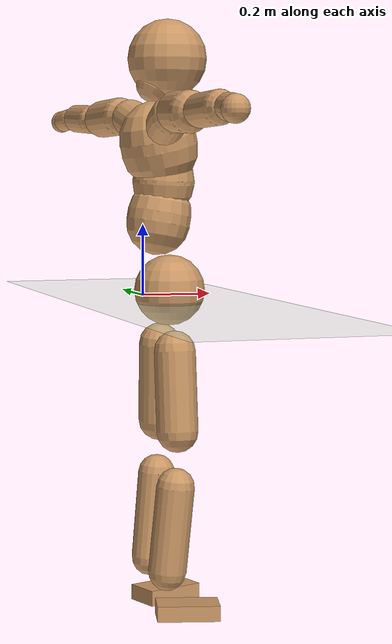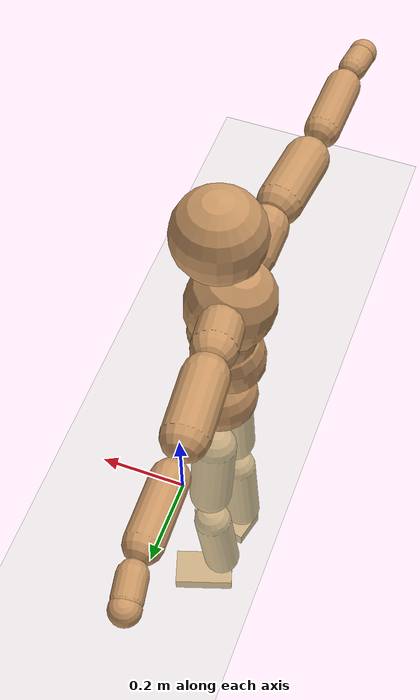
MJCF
<mujoco model="humanoid">
  <compiler coordinate="local"/>
  <default>
    <joint damping="0.0" armature="0.01" stiffness="0.0" limited="true"/>
    <geom conaffinity="1" condim="3" contype="7" margin="0.001" rgba="0.8 0.6 .4 1"/>
  </default>
  <asset>
    <texture type="skybox" builtin="gradient" rgb1=".4 .5 .6" rgb2="0 0 0" width="100" height="100"/>
    <texture builtin="flat" height="1278" mark="cross" markrgb="1 1 1" name="texgeom" random="0.01" rgb1="0.8 0.6 0.4" rgb2="0.8 0.6 0.4" type="cube" width="127"/>
    <texture builtin="checker" height="100" name="texplane" rgb1="0 0 0" rgb2="0.8 0.8 0.8" type="2d" width="100"/>
    <material name="MatPlane" reflectance="0.5" shininess="1" specular="1" texrepeat="60 60" texture="texplane"/>
    <material name="geom" texture="texgeom" texuniform="true"/>
  </asset>
  <worldbody>
    <light cutoff="100" diffuse="1 1 1" dir="-0 0 -1.3" directional="true" exponent="1" pos="0 0 1.3" specular=".1 .1 .1"/>
    <geom conaffinity="1" condim="3" name="floor" pos="0 0 0" rgba="0.8 0.9 0.8 1" size="100 100 .2" type="plane" material="MatPlane"/>
    <body name="Pelvis" pos="-0.001 -0.2487 0.034">
      <freejoint name="Pelvis"/>
      <geom type="sphere" contype="1" conaffinity="1" density="500" size="0.0948" pos="0.0000 0.0000 0.0000" name="Pelvis"/>
      <body name="L_Hip" pos="-0.0101 0.0552 -0.0794">
        <joint name="L_Hip_x" type="hinge" pos="0 0 0" axis="1 0 0" stiffness="800" damping="80" armature="0.02" range="-180.0000 180.0000"/>
        <joint name="L_Hip_y" type="hinge" pos="0 0 0" axis="0 1 0" stiffness="800" damping="80" armature="0.02" range="-180.0000 180.0000"/>
        <joint name="L_Hip_z" type="hinge" pos="0 0 0" axis="0 0 1" stiffness="800" damping="80" armature="0.02" range="-180.0000 180.0000"/>
        <geom type="capsule" contype="1" conaffinity="1" density="500" fromto="0.0021 0.0077 -0.0712 0.0082 0.0309 -0.2848" size="0.056" name="L_Hip"/>
        <body name="L_Knee" pos="0.0103 0.0386 -0.356">
          <joint name="L_Knee_x" type="hinge" pos="0 0 0" axis="1 0 0" stiffness="800" damping="80" armature="0.02" range="-180.0000 180.0000"/>
          <joint name="L_Knee_y" type="hinge" pos="0 0 0" axis="0 1 0" stiffness="800" damping="80" armature="0.02" range="-180.0000 180.0000"/>
          <joint name="L_Knee_z" type="hinge" pos="0 0 0" axis="0 0 1" stiffness="800" damping="80" armature="0.02" range="-180.0000 180.0000"/>
          <geom type="capsule" contype="1" conaffinity="1" density="500" fromto="-0.0071 -0.0027 -0.0778 -0.0283 -0.0108 -0.3114" size="0.0507" name="L_Knee"/>
          <body name="L_Ankle" pos="-0.0354 -0.0135 -0.3892">
            <joint name="L_Ankle_x" type="hinge" pos="0 0 0" axis="1 0 0" stiffness="800" damping="80" armature="0.02" range="-180.0000 180.0000"/>
            <joint name="L_Ankle_y" type="hinge" pos="0 0 0" axis="0 1 0" stiffness="800" damping="80" armature="0.02" range="-180.0000 180.0000"/>
            <joint name="L_Ankle_z" type="hinge" pos="0 0 0" axis="0 0 1" stiffness="800" damping="80" armature="0.02" range="-180.0000 180.0000"/>
            <geom type="box" contype="1" conaffinity="1" density="500" pos="0.0574 0.0189 -0.0277" size="0.0814 0.0485 0.021" quat="0.9873 0.0000 0.0000 0.1587" name="L_Ankle"/>
            <body name="L_Toe" pos="0.1148 0.0379 -0.0554">
              <joint name="L_Toe_x" type="hinge" pos="0 0 0" axis="1 0 0" stiffness="500" damping="50" armature="0.02" range="-180.0000 180.0000"/>
              <joint name="L_Toe_y" type="hinge" pos="0 0 0" axis="0 1 0" stiffness="500" damping="50" armature="0.02" range="-180.0000 180.0000"/>
              <joint name="L_Toe_z" type="hinge" pos="0 0 0" axis="0 0 1" stiffness="500" damping="50" armature="0.02" range="-180.0000 180.0000"/>
              <geom type="box" contype="1" conaffinity="1" density="500" pos="0.0000 0.0000 0.0282" size="0.001 0.0023 0.0011" quat="0.9865 0.0000 0.0000 0.1638" name="L_Toe"/>
            </body>
          </body>
        </body>
      </body>
      <body name="R_Hip" pos="-0.0059 -0.0564 -0.0881">
        <joint name="R_Hip_x" type="hinge" pos="0 0 0" axis="1 0 0" stiffness="800" damping="80" armature="0.02" range="-180.0000 180.0000"/>
        <joint name="R_Hip_y" type="hinge" pos="0 0 0" axis="0 1 0" stiffness="800" damping="80" armature="0.02" range="-180.0000 180.0000"/>
        <joint name="R_Hip_z" type="hinge" pos="0 0 0" axis="0 0 1" stiffness="800" damping="80" armature="0.02" range="-180.0000 180.0000"/>
        <geom type="capsule" contype="1" conaffinity="1" density="500" fromto="0.0000 -0.0078 -0.0708 0.0002 -0.0314 -0.2832" size="0.0556" name="R_Hip"/>
        <body name="R_Knee" pos="0.0002 -0.0392 -0.354">
          <joint name="R_Knee_x" type="hinge" pos="0 0 0" axis="1 0 0" stiffness="800" damping="80" armature="0.02" range="-180.0000 180.0000"/>
          <joint name="R_Knee_y" type="hinge" pos="0 0 0" axis="0 1 0" stiffness="800" damping="80" armature="0.02" range="-180.0000 180.0000"/>
          <joint name="R_Knee_z" type="hinge" pos="0 0 0" axis="0 0 1" stiffness="800" damping="80" armature="0.02" range="-180.0000 180.0000"/>
          <geom type="capsule" contype="1" conaffinity="1" density="500" fromto="-0.0064 0.0034 -0.0767 -0.0255 0.0137 -0.3069" size="0.0512" name="R_Knee"/>
          <body name="R_Ankle" pos="-0.0319 0.0172 -0.3836">
            <joint name="R_Ankle_x" type="hinge" pos="0 0 0" axis="1 0 0" stiffness="800" damping="80" armature="0.02" range="-180.0000 180.0000"/>
            <joint name="R_Ankle_y" type="hinge" pos="0 0 0" axis="0 1 0" stiffness="800" damping="80" armature="0.02" range="-180.0000 180.0000"/>
            <joint name="R_Ankle_z" type="hinge" pos="0 0 0" axis="0 0 1" stiffness="800" damping="80" armature="0.02" range="-180.0000 180.0000"/>
            <geom type="box" contype="1" conaffinity="1" density="500" pos="0.0604 -0.0147 -0.0294" size="0.084 0.0475 0.0211" quat="0.9929 0.0000 0.0000 -0.1193" name="R_Ankle"/>
            <body name="R_Toe" pos="0.1208 -0.0295 -0.0587">
              <joint name="R_Toe_x" type="hinge" pos="0 0 0" axis="1 0 0" stiffness="500" damping="50" armature="0.02" range="-180.0000 180.0000"/>
              <joint name="R_Toe_y" type="hinge" pos="0 0 0" axis="0 1 0" stiffness="500" damping="50" armature="0.02" range="-180.0000 180.0000"/>
              <joint name="R_Toe_z" type="hinge" pos="0 0 0" axis="0 0 1" stiffness="500" damping="50" armature="0.02" range="-180.0000 180.0000"/>
              <geom type="box" contype="1" conaffinity="1" density="500" pos="0.0000 0.0000 0.0296" size="0.0011 0.0024 0.0011" quat="0.9940 0.0000 0.0000 -0.1098" name="R_Toe"/>
            </body>
          </body>
        </body>
      </body>
      <body name="Torso" pos="-0.0408 0.0041 0.1245">
        <joint name="Torso_x" type="hinge" pos="0 0 0" axis="1 0 0" stiffness="1000" damping="100" armature="0.02" range="-180.0000 180.0000"/>
        <joint name="Torso_y" type="hinge" pos="0 0 0" axis="0 1 0" stiffness="1000" damping="100" armature="0.02" range="-180.0000 180.0000"/>
        <joint name="Torso_z" type="hinge" pos="0 0 0" axis="0 0 1" stiffness="1000" damping="100" armature="0.02" range="-180.0000 180.0000"/>
        <geom type="capsule" contype="1" conaffinity="1" density="500" fromto="0.0152 0.0033 0.0822 0.0102 0.0022 0.0548" size="0.0854" name="Torso"/>
        <body name="Spine" pos="0.0254 0.0055 0.1369">
          <joint name="Spine_x" type="hinge" pos="0 0 0" axis="1 0 0" stiffness="1000" damping="100" armature="0.02" range="-180.0000 180.0000"/>
          <joint name="Spine_y" type="hinge" pos="0 0 0" axis="0 1 0" stiffness="1000" damping="100" armature="0.02" range="-180.0000 180.0000"/>
          <joint name="Spine_z" type="hinge" pos="0 0 0" axis="0 0 1" stiffness="1000" damping="100" armature="0.02" range="-180.0000 180.0000"/>
          <geom type="capsule" contype="1" conaffinity="1" density="500" fromto="0.0011 -0.0014 0.0331 0.0007 -0.0009 0.0221" size="0.0829" name="Spine"/>
          <body name="Chest" pos="0.0019 -0.0023 0.0552">
            <joint name="Chest_x" type="hinge" pos="0 0 0" axis="1 0 0" stiffness="1000" damping="100" armature="0.02" range="-180.0000 180.0000"/>
            <joint name="Chest_y" type="hinge" pos="0 0 0" axis="0 1 0" stiffness="1000" damping="100" armature="0.02" range="-180.0000 180.0000"/>
            <joint name="Chest_z" type="hinge" pos="0 0 0" axis="0 0 1" stiffness="1000" damping="100" armature="0.02" range="-180.0000 180.0000"/>
            <geom type="capsule" contype="1" conaffinity="1" density="500" fromto="-0.0200 -0.0054 0.0871 -0.0133 -0.0036 0.0581" size="0.1029" name="Chest"/>
            <body name="Neck" pos="-0.0443 -0.013 0.2114">
              <joint name="Neck_x" type="hinge" pos="0 0 0" axis="1 0 0" stiffness="500" damping="50" armature="0.02" range="-180.0000 180.0000"/>
              <joint name="Neck_y" type="hinge" pos="0 0 0" axis="0 1 0" stiffness="500" damping="50" armature="0.02" range="-180.0000 180.0000"/>
              <joint name="Neck_z" type="hinge" pos="0 0 0" axis="0 0 1" stiffness="500" damping="50" armature="0.02" range="-180.0000 180.0000"/>
              <geom type="capsule" contype="1" conaffinity="1" density="500" fromto="0.0103 0.0020 0.0172 0.0411 0.0079 0.0689" size="0.0459" name="Neck"/>
              <body name="Head" pos="0.0513 0.0098 0.0861">
                <joint name="Head_x" type="hinge" pos="0 0 0" axis="1 0 0" stiffness="500" damping="50" armature="0.02" range="-180.0000 180.0000"/>
                <joint name="Head_y" type="hinge" pos="0 0 0" axis="0 1 0" stiffness="500" damping="50" armature="0.02" range="-180.0000 180.0000"/>
                <joint name="Head_z" type="hinge" pos="0 0 0" axis="0 0 1" stiffness="500" damping="50" armature="0.02" range="-180.0000 180.0000"/>
                <geom type="sphere" contype="1" conaffinity="1" density="500" size="0.1051" pos="0.0000 0.0000 0.0000" name="Head"/>
              </body>
            </body>
            <body name="L_Thorax" pos="-0.0265 0.07 0.1122">
              <joint name="L_Thorax_x" type="hinge" pos="0 0 0" axis="1 0 0" stiffness="500" damping="50" armature="0.02" range="-180.0000 180.0000"/>
              <joint name="L_Thorax_y" type="hinge" pos="0 0 0" axis="0 1 0" stiffness="500" damping="50" armature="0.02" range="-180.0000 180.0000"/>
              <joint name="L_Thorax_z" type="hinge" pos="0 0 0" axis="0 0 1" stiffness="500" damping="50" armature="0.02" range="-180.0000 180.0000"/>
              <geom type="capsule" contype="1" conaffinity="1" density="500" fromto="-0.0042 0.0242 0.0081 -0.0166 0.0970 0.0323" size="0.0514" name="L_Thorax"/>
              <body name="L_Shoulder" pos="-0.0208 0.1212 0.0403">
                <joint name="L_Shoulder_x" type="hinge" pos="0 0 0" axis="1 0 0" stiffness="500" damping="50" armature="0.02" range="-720.0000 720.0000"/>
                <joint name="L_Shoulder_y" type="hinge" pos="0 0 0" axis="0 1 0" stiffness="500" damping="50" armature="0.02" range="-720.0000 720.0000"/>
                <joint name="L_Shoulder_z" type="hinge" pos="0 0 0" axis="0 0 1" stiffness="500" damping="50" armature="0.02" range="-720.0000 720.0000"/>
                <geom type="capsule" contype="1" conaffinity="1" density="500" fromto="-0.0039 0.0468 -0.0017 -0.0156 0.1871 -0.0068" size="0.0523" name="L_Shoulder"/>
                <body name="L_Elbow" pos="-0.0195 0.2339 -0.0086">
                  <joint name="L_Elbow_x" type="hinge" pos="0 0 0" axis="1 0 0" stiffness="500" damping="50" armature="0.02" range="-720.0000 720.0000"/>
                  <joint name="L_Elbow_y" type="hinge" pos="0 0 0" axis="0 1 0" stiffness="500" damping="50" armature="0.02" range="-720.0000 720.0000"/>
                  <joint name="L_Elbow_z" type="hinge" pos="0 0 0" axis="0 0 1" stiffness="500" damping="50" armature="0.02" range="-720.0000 720.0000"/>
                  <geom type="capsule" contype="1" conaffinity="1" density="500" fromto="-0.0018 0.0482 0.0020 -0.0072 0.1928 0.0078" size="0.0411" name="L_Elbow"/>
                  <body name="L_Wrist" pos="-0.009 0.241 0.0098">
                    <joint name="L_Wrist_x" type="hinge" pos="0 0 0" axis="1 0 0" stiffness="300" damping="30" armature="0.02" range="-180.0000 180.0000"/>
                    <joint name="L_Wrist_y" type="hinge" pos="0 0 0" axis="0 1 0" stiffness="300" damping="30" armature="0.02" range="-180.0000 180.0000"/>
                    <joint name="L_Wrist_z" type="hinge" pos="0 0 0" axis="0 0 1" stiffness="300" damping="30" armature="0.02" range="-180.0000 180.0000"/>
                    <geom type="capsule" contype="1" conaffinity="1" density="500" fromto="-0.0027 0.0158 -0.0019 -0.0109 0.0630 -0.0076" size="0.0317" name="L_Wrist"/>
                    <body name="L_Hand" pos="-0.0136 0.0788 -0.0094">
                      <joint name="L_Hand_x" type="hinge" pos="0 0 0" axis="1 0 0" stiffness="300" damping="30" armature="0.02" range="-180.0000 180.0000"/>
                      <joint name="L_Hand_y" type="hinge" pos="0 0 0" axis="0 1 0" stiffness="300" damping="30" armature="0.02" range="-180.0000 180.0000"/>
                      <joint name="L_Hand_z" type="hinge" pos="0 0 0" axis="0 0 1" stiffness="300" damping="30" armature="0.02" range="-180.0000 180.0000"/>
                      <geom type="sphere" contype="1" conaffinity="1" density="500" size="0.0325" pos="0.0000 0.0000 0.0000" name="L_Hand"/>
                    </body>
                  </body>
                </body>
              </body>
            </body>
            <body name="R_Thorax" pos="-0.0292 -0.0841 0.112">
              <joint name="R_Thorax_x" type="hinge" pos="0 0 0" axis="1 0 0" stiffness="500" damping="50" armature="0.02" range="-180.0000 180.0000"/>
              <joint name="R_Thorax_y" type="hinge" pos="0 0 0" axis="0 1 0" stiffness="500" damping="50" armature="0.02" range="-180.0000 180.0000"/>
              <joint name="R_Thorax_z" type="hinge" pos="0 0 0" axis="0 0 1" stiffness="500" damping="50" armature="0.02" range="-180.0000 180.0000"/>
              <geom type="capsule" contype="1" conaffinity="1" density="500" fromto="-0.0021 -0.0225 0.0083 -0.0084 -0.0899 0.0330" size="0.0517" name="R_Thorax"/>
              <body name="R_Shoulder" pos="-0.0105 -0.1123 0.0413">
                <joint name="R_Shoulder_x" type="hinge" pos="0 0 0" axis="1 0 0" stiffness="500" damping="50" armature="0.02" range="-720.0000 720.0000"/>
                <joint name="R_Shoulder_y" type="hinge" pos="0 0 0" axis="0 1 0" stiffness="500" damping="50" armature="0.02" range="-720.0000 720.0000"/>
                <joint name="R_Shoulder_z" type="hinge" pos="0 0 0" axis="0 0 1" stiffness="500" damping="50" armature="0.02" range="-720.0000 720.0000"/>
                <geom type="capsule" contype="1" conaffinity="1" density="500" fromto="-0.0050 -0.0482 -0.0011 -0.0199 -0.1926 -0.0043" size="0.0531" name="R_Shoulder"/>
                <body name="R_Elbow" pos="-0.0248 -0.2408 -0.0054">
                  <joint name="R_Elbow_x" type="hinge" pos="0 0 0" axis="1 0 0" stiffness="500" damping="50" armature="0.02" range="-720.0000 720.0000"/>
                  <joint name="R_Elbow_y" type="hinge" pos="0 0 0" axis="0 1 0" stiffness="500" damping="50" armature="0.02" range="-720.0000 720.0000"/>
                  <joint name="R_Elbow_z" type="hinge" pos="0 0 0" axis="0 0 1" stiffness="500" damping="50" armature="0.02" range="-720.0000 720.0000"/>
                  <geom type="capsule" contype="1" conaffinity="1" density="500" fromto="-0.0013 -0.0491 0.0013 -0.0052 -0.1963 0.0052" size="0.0421" name="R_Elbow"/>
                  <body name="R_Wrist" pos="-0.0065 -0.2454 0.0065">
                    <joint name="R_Wrist_x" type="hinge" pos="0 0 0" axis="1 0 0" stiffness="300" damping="30" armature="0.02" range="-180.0000 180.0000"/>
                    <joint name="R_Wrist_y" type="hinge" pos="0 0 0" axis="0 1 0" stiffness="300" damping="30" armature="0.02" range="-180.0000 180.0000"/>
                    <joint name="R_Wrist_z" type="hinge" pos="0 0 0" axis="0 0 1" stiffness="300" damping="30" armature="0.02" range="-180.0000 180.0000"/>
                    <geom type="capsule" contype="1" conaffinity="1" density="500" fromto="-0.0018 -0.0165 -0.0016 -0.0071 -0.0659 -0.0062" size="0.0329" name="R_Wrist"/>
                    <body name="R_Hand" pos="-0.0089 -0.0824 -0.0078">
                      <joint name="R_Hand_x" type="hinge" pos="0 0 0" axis="1 0 0" stiffness="300" damping="30" armature="0.02" range="-180.0000 180.0000"/>
                      <joint name="R_Hand_y" type="hinge" pos="0 0 0" axis="0 1 0" stiffness="300" damping="30" armature="0.02" range="-180.0000 180.0000"/>
                      <joint name="R_Hand_z" type="hinge" pos="0 0 0" axis="0 0 1" stiffness="300" damping="30" armature="0.02" range="-180.0000 180.0000"/>
                      <geom type="sphere" contype="1" conaffinity="1" density="500" size="0.0337" pos="0.0000 0.0000 0.0000" name="R_Hand"/>
                    </body>
                  </body>
                </body>
              </body>
            </body>
          </body>
        </body>
      </body>
    </body>
  </worldbody>
  <actuator>
    <motor name="L_Hip_x" joint="L_Hip_x" gear="500"/>
    <motor name="L_Hip_y" joint="L_Hip_y" gear="500"/>
    <motor name="L_Hip_z" joint="L_Hip_z" gear="500"/>
    <motor name="L_Knee_x" joint="L_Knee_x" gear="500"/>
    <motor name="L_Knee_y" joint="L_Knee_y" gear="500"/>
    <motor name="L_Knee_z" joint="L_Knee_z" gear="500"/>
    <motor name="L_Ankle_x" joint="L_Ankle_x" gear="500"/>
    <motor name="L_Ankle_y" joint="L_Ankle_y" gear="500"/>
    <motor name="L_Ankle_z" joint="L_Ankle_z" gear="500"/>
    <motor name="L_Toe_x" joint="L_Toe_x" gear="500"/>
    <motor name="L_Toe_y" joint="L_Toe_y" gear="500"/>
    <motor name="L_Toe_z" joint="L_Toe_z" gear="500"/>
    <motor name="R_Hip_x" joint="R_Hip_x" gear="500"/>
    <motor name="R_Hip_y" joint="R_Hip_y" gear="500"/>
    <motor name="R_Hip_z" joint="R_Hip_z" gear="500"/>
    <motor name="R_Knee_x" joint="R_Knee_x" gear="500"/>
    <motor name="R_Knee_y" joint="R_Knee_y" gear="500"/>
    <motor name="R_Knee_z" joint="R_Knee_z" gear="500"/>
    <motor name="R_Ankle_x" joint="R_Ankle_x" gear="500"/>
    <motor name="R_Ankle_y" joint="R_Ankle_y" gear="500"/>
    <motor name="R_Ankle_z" joint="R_Ankle_z" gear="500"/>
    <motor name="R_Toe_x" joint="R_Toe_x" gear="500"/>
    <motor name="R_Toe_y" joint="R_Toe_y" gear="500"/>
    <motor name="R_Toe_z" joint="R_Toe_z" gear="500"/>
    <motor name="Torso_x" joint="Torso_x" gear="500"/>
    <motor name="Torso_y" joint="Torso_y" gear="500"/>
    <motor name="Torso_z" joint="Torso_z" gear="500"/>
    <motor name="Spine_x" joint="Spine_x" gear="500"/>
    <motor name="Spine_y" joint="Spine_y" gear="500"/>
    <motor name="Spine_z" joint="Spine_z" gear="500"/>
    <motor name="Chest_x" joint="Chest_x" gear="500"/>
    <motor name="Chest_y" joint="Chest_y" gear="500"/>
    <motor name="Chest_z" joint="Chest_z" gear="500"/>
    <motor name="Neck_x" joint="Neck_x" gear="500"/>
    <motor name="Neck_y" joint="Neck_y" gear="500"/>
    <motor name="Neck_z" joint="Neck_z" gear="500"/>
    <motor name="Head_x" joint="Head_x" gear="500"/>
    <motor name="Head_y" joint="Head_y" gear="500"/>
    <motor name="Head_z" joint="Head_z" gear="500"/>
    <motor name="L_Thorax_x" joint="L_Thorax_x" gear="500"/>
    <motor name="L_Thorax_y" joint="L_Thorax_y" gear="500"/>
    <motor name="L_Thorax_z" joint="L_Thorax_z" gear="500"/>
    <motor name="L_Shoulder_x" joint="L_Shoulder_x" gear="500"/>
    <motor name="L_Shoulder_y" joint="L_Shoulder_y" gear="500"/>
    <motor name="L_Shoulder_z" joint="L_Shoulder_z" gear="500"/>
    <motor name="L_Elbow_x" joint="L_Elbow_x" gear="500"/>
    <motor name="L_Elbow_y" joint="L_Elbow_y" gear="500"/>
    <motor name="L_Elbow_z" joint="L_Elbow_z" gear="500"/>
    <motor name="L_Wrist_x" joint="L_Wrist_x" gear="500"/>
    <motor name="L_Wrist_y" joint="L_Wrist_y" gear="500"/>
    <motor name="L_Wrist_z" joint="L_Wrist_z" gear="500"/>
    <motor name="L_Hand_x" joint="L_Hand_x" gear="500"/>
    <motor name="L_Hand_y" joint="L_Hand_y" gear="500"/>
    <motor name="L_Hand_z" joint="L_Hand_z" gear="500"/>
    <motor name="R_Thorax_x" joint="R_Thorax_x" gear="500"/>
    <motor name="R_Thorax_y" joint="R_Thorax_y" gear="500"/>
    <motor name="R_Thorax_z" joint="R_Thorax_z" gear="500"/>
    <motor name="R_Shoulder_x" joint="R_Shoulder_x" gear="500"/>
    <motor name="R_Shoulder_y" joint="R_Shoulder_y" gear="500"/>
    <motor name="R_Shoulder_z" joint="R_Shoulder_z" gear="500"/>
    <motor name="R_Elbow_x" joint="R_Elbow_x" gear="500"/>
    <motor name="R_Elbow_y" joint="R_Elbow_y" gear="500"/>
    <motor name="R_Elbow_z" joint="R_Elbow_z" gear="500"/>
    <motor name="R_Wrist_x" joint="R_Wrist_x" gear="500"/>
    <motor name="R_Wrist_y" joint="R_Wrist_y" gear="500"/>
    <motor name="R_Wrist_z" joint="R_Wrist_z" gear="500"/>
    <motor name="R_Hand_x" joint="R_Hand_x" gear="500"/>
    <motor name="R_Hand_y" joint="R_Hand_y" gear="500"/>
    <motor name="R_Hand_z" joint="R_Hand_z" gear="500"/>
  </actuator>
  <contact>
    <exclude body1="Torso" body2="Chest"/>
    <exclude body1="Head" body2="Chest"/>
    <exclude body1="R_Knee" body2="R_Toe"/>
    <exclude body1="R_Knee" body2="L_Ankle"/>
    <exclude body1="R_Knee" body2="L_Toe"/>
    <exclude body1="L_Knee" body2="L_Toe"/>
    <exclude body1="L_Knee" body2="R_Ankle"/>
    <exclude body1="L_Knee" body2="R_Toe"/>
    <exclude body1="L_Shoulder" body2="Chest"/>
    <exclude body1="R_Shoulder" body2="Chest"/>
  </contact>
  <sensor/>
  <size njmax="700" nconmax="700"/>
</mujoco>
